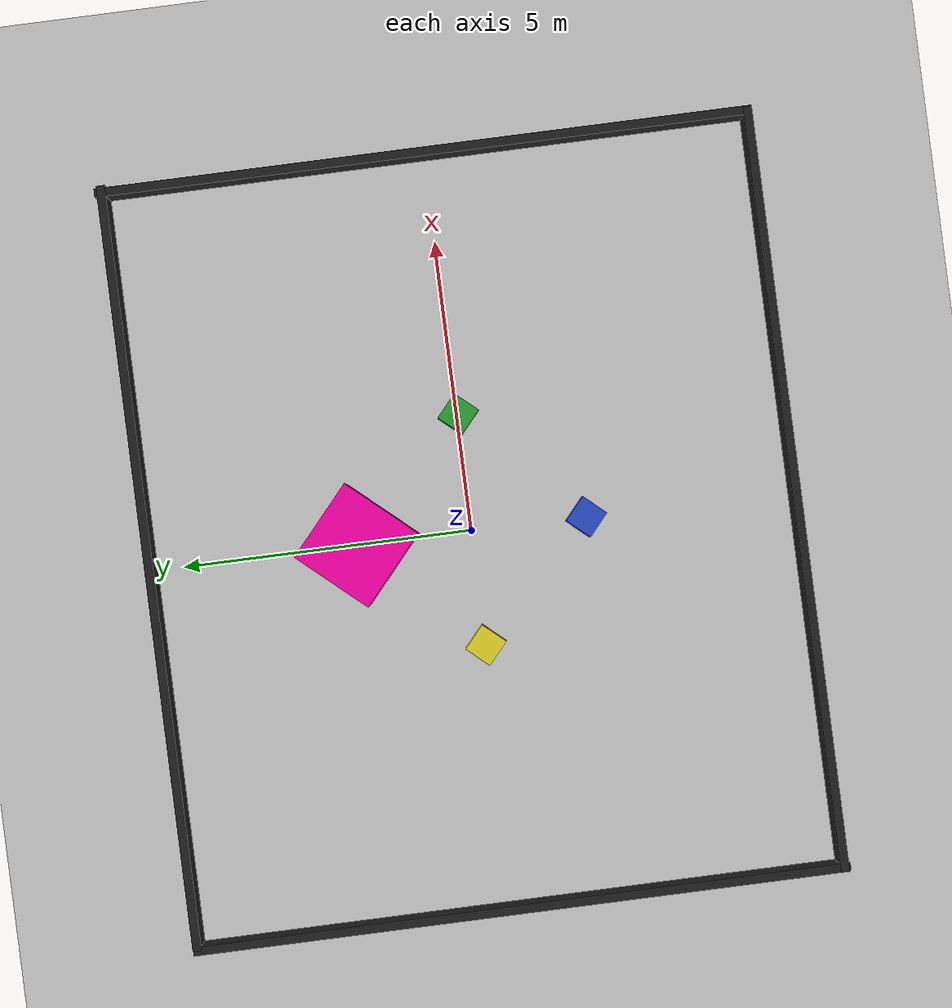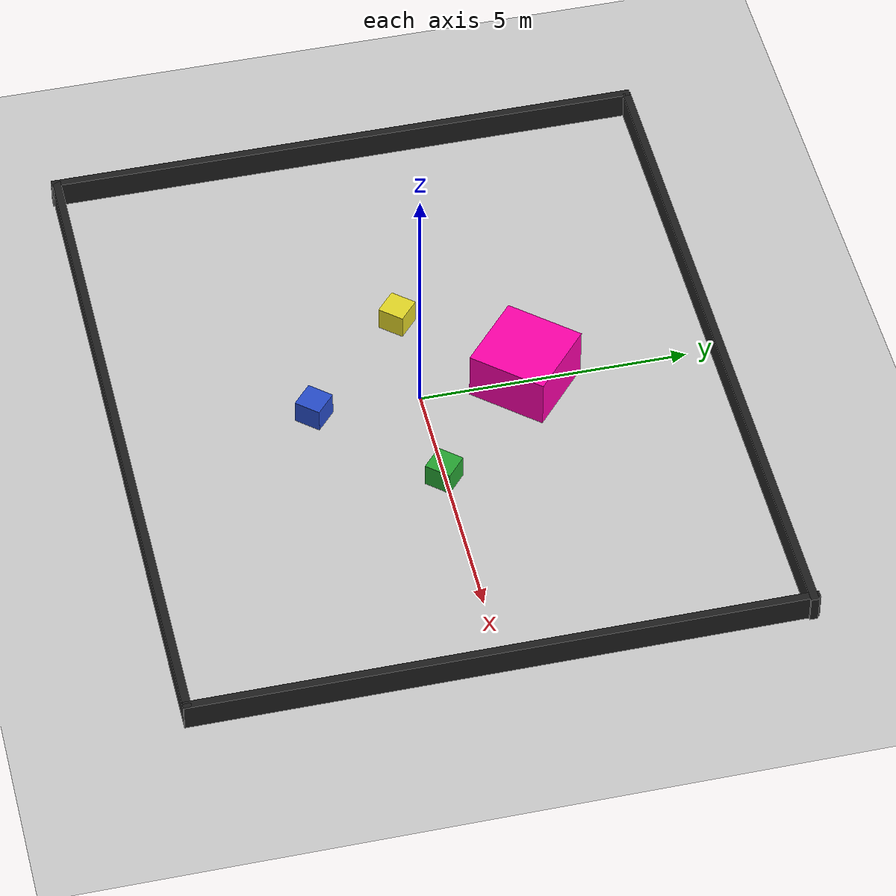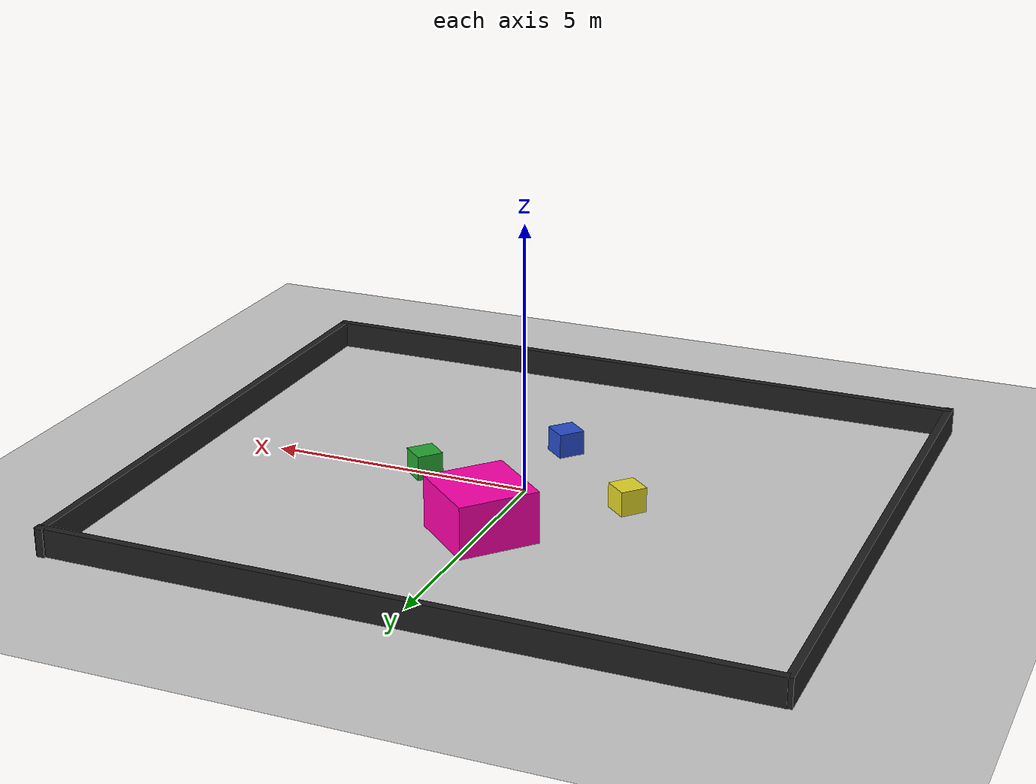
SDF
<sdf version="1.4">
 <world name="default">
  <scene><ambient>0.4 0.4 0.4 1</ambient><background>0.7 0.7 0.7 1</background><shadows>true</shadows></scene>
  <include><uri>model://sun</uri></include>
  <include><uri>model://ground_plane</uri></include>
  <include><uri>model://encaixotado/parede</uri></include>
  <include><uri>model://encaixotado/objeto/cubo_amarelo</uri><pose>-1.97 0.01 0.2 0 0 0.849</pose></include>
  <include><uri>model://encaixotado/objeto/cubo_azul</uri><pose>-0.02 -1.97 0.2 0 0 0.849</pose></include>
  <include><uri>model://encaixotado/objeto/cubo_majenta</uri><pose>0.00 1.96 0.2 0 0 0.849</pose></include>
  <include><uri>model://encaixotado/objeto/cubo_verde</uri><pose>2.00 -0.02 0.2 0 0 0.849</pose></include>
  <physics type="ode">
   <real_time_update_rate>1000.0</real_time_update_rate>
   <max_step_size>0.001</max_step_size>
   <real_time_factor>1</real_time_factor>
   <ode>
    <solver>
     <type>quick</type>
     <iters>150</iters>
     <precon_iters>0</precon_iters>
     <sor>1.400000</sor>
     <use_dynamic_moi_rescaling>1</use_dynamic_moi_rescaling>
    </solver>
    <constraints>
     <cfm>0.00001</cfm>
     <erp>0.2</erp>
     <contact_max_correcting_vel>2000.000000</contact_max_correcting_vel>
     <contact_surface_layer>0.01000</contact_surface_layer>
    </constraints>
   </ode>
  </physics>
 </world>
</sdf>

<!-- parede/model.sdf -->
<sdf version='1.6'>
  <model name='parede'>
    <link name='Wall_0'>
      <pose frame=''>-0.004951 -5.56026 0 0 -0 0</pose>
      <self_collide>0</self_collide>
      <enable_wind>0</enable_wind>
      <kinematic>0</kinematic>
      <inertial>
        <inertia>
          <ixx>0</ixx>
          <ixy>0</ixy>
          <ixz>0</ixz>
          <iyy>0</iyy>
          <iyz>0</iyz>
          <izz>0</izz>
        </inertia>
        <mass>0</mass>
        <pose frame=''>0 0 0 0 -0 0</pose>
      </inertial>
      <gravity>1</gravity>
      <visual name='Wall_0_Visual'>
        <pose frame=''>0 0 0 0 -0 0</pose>
        <geometry>
          <box>
            <size>13.1161 0.15 1.0</size>
          </box>
        </geometry>
        <material>
          <script>
            <uri>file://media/materials/scripts/gazebo.material</uri>
            <name>Gazebo/Black</name>
          </script>
          <ambient>0 0 0 1</ambient>
          <shader type='vertex'>
            <normal_map>__default__</normal_map>
          </shader>
          <diffuse>0 0 0 1</diffuse>
          <specular>0 0 0 1</specular>
          <emissive>0 0 0 1</emissive>
        </material>
        <meta>
          <layer>0</layer>
        </meta>
        <transparency>0</transparency>
        <cast_shadows>1</cast_shadows>
      </visual>
      <collision name='Wall_0_Collision'>
        <laser_retro>0</laser_retro>
        <max_contacts>10</max_contacts>
        <pose frame=''>0 0 0 0 -0 0</pose>
        <geometry>
          <box>
            <size>13.1161 0.15 1.0</size>
          </box>
        </geometry>
        <surface>
          <friction>
            <ode>
              <mu>1</mu>
              <mu2>1</mu2>
              <fdir1>0 0 0</fdir1>
              <slip1>0</slip1>
              <slip2>0</slip2>
            </ode>
            <torsional>
              <coefficient>1</coefficient>
              <patch_radius>0</patch_radius>
              <surface_radius>0</surface_radius>
              <use_patch_radius>1</use_patch_radius>
              <ode>
                <slip>0</slip>
              </ode>
            </torsional>
          </friction>
          <bounce>
            <restitution_coefficient>0</restitution_coefficient>
            <threshold>1e+06</threshold>
          </bounce>
          <contact>
            <collide_without_contact>0</collide_without_contact>
            <collide_without_contact_bitmask>1</collide_without_contact_bitmask>
            <collide_bitmask>1</collide_bitmask>
            <ode>
              <soft_cfm>0</soft_cfm>
              <soft_erp>0.2</soft_erp>
              <kp>1e+13</kp>
              <kd>1</kd>
              <max_vel>0.01</max_vel>
              <min_depth>0</min_depth>
            </ode>
            <bullet>
              <split_impulse>1</split_impulse>
              <split_impulse_penetration_threshold>-0.01</split_impulse_penetration_threshold>
              <soft_cfm>0</soft_cfm>
              <soft_erp>0.2</soft_erp>
              <kp>1e+13</kp>
              <kd>1</kd>
            </bullet>
          </contact>
        </surface>
      </collision>
    </link>
    <link name='Wall_1'>
      <pose frame=''>0.061052 5.53717 0 0 -0 3.14</pose>
      <self_collide>0</self_collide>
      <enable_wind>0</enable_wind>
      <kinematic>0</kinematic>
      <inertial>
        <inertia>
          <ixx>0</ixx>
          <ixy>0</ixy>
          <ixz>0</ixz>
          <iyy>0</iyy>
          <iyz>0</iyz>
          <izz>0</izz>
        </inertia>
        <mass>0</mass>
        <pose frame=''>0 0 0 0 -0 0</pose>
      </inertial>
      <gravity>1</gravity>
      <visual name='Wall_1_Visual'>
        <pose frame=''>0 0 0 0 -0 0</pose>
        <geometry>
          <box>
            <size>13.1161 0.15 1.0</size>
          </box>
        </geometry>
        <material>
          <script>
            <uri>file://media/materials/scripts/gazebo.material</uri>
            <name>Gazebo/Black</name>
          </script>
          <ambient>0 0 0 1</ambient>
          <shader type='vertex'>
            <normal_map>__default__</normal_map>
          </shader>
          <diffuse>0 0 0 1</diffuse>
          <specular>0 0 0 1</specular>
          <emissive>0 0 0 1</emissive>
        </material>
        <meta>
          <layer>0</layer>
        </meta>
        <transparency>0</transparency>
        <cast_shadows>1</cast_shadows>
      </visual>
      <collision name='Wall_1_Collision'>
        <laser_retro>0</laser_retro>
        <max_contacts>10</max_contacts>
        <pose frame=''>0 0 0 0 -0 0</pose>
        <geometry>
          <box>
            <size>13.1161 0.15 1.0</size>
          </box>
        </geometry>
        <surface>
          <friction>
            <ode>
              <mu>1</mu>
              <mu2>1</mu2>
              <fdir1>0 0 0</fdir1>
              <slip1>0</slip1>
              <slip2>0</slip2>
            </ode>
            <torsional>
              <coefficient>1</coefficient>
              <patch_radius>0</patch_radius>
              <surface_radius>0</surface_radius>
              <use_patch_radius>1</use_patch_radius>
              <ode>
                <slip>0</slip>
              </ode>
            </torsional>
          </friction>
          <bounce>
            <restitution_coefficient>0</restitution_coefficient>
            <threshold>1e+06</threshold>
          </bounce>
          <contact>
            <collide_without_contact>0</collide_without_contact>
            <collide_without_contact_bitmask>1</collide_without_contact_bitmask>
            <collide_bitmask>1</collide_bitmask>
            <ode>
              <soft_cfm>0</soft_cfm>
              <soft_erp>0.2</soft_erp>
              <kp>1e+13</kp>
              <kd>1</kd>
              <max_vel>0.01</max_vel>
              <min_depth>0</min_depth>
            </ode>
            <bullet>
              <split_impulse>1</split_impulse>
              <split_impulse_penetration_threshold>-0.01</split_impulse_penetration_threshold>
              <soft_cfm>0</soft_cfm>
              <soft_erp>0.2</soft_erp>
              <kp>1e+13</kp>
              <kd>1</kd>
            </bullet>
          </contact>
        </surface>
      </collision>
    </link>
    <link name='Wall_2'>
      <pose frame=''>6.5 0.005899 0 0 -0 1.57</pose>
      <self_collide>0</self_collide>
      <enable_wind>0</enable_wind>
      <kinematic>0</kinematic>
      <inertial>
        <inertia>
          <ixx>0</ixx>
          <ixy>0</ixy>
          <ixz>0</ixz>
          <iyy>0</iyy>
          <iyz>0</iyz>
          <izz>0</izz>
        </inertia>
        <mass>0</mass>
        <pose frame=''>0 0 0 0 -0 0</pose>
      </inertial>
      <gravity>1</gravity>
      <visual name='Wall_2_Visual'>
        <pose frame=''>0 0 0 0 -0 0</pose>
        <geometry>
          <box>
            <size>11.2703 0.15 1.0</size>
          </box>
        </geometry>
        <material>
          <script>
            <uri>file://media/materials/scripts/gazebo.material</uri>
            <name>Gazebo/Black</name>
          </script>
          <ambient>0 0 0 1</ambient>
          <shader type='vertex'>
            <normal_map>__default__</normal_map>
          </shader>
          <diffuse>0 0 0 1</diffuse>
          <specular>0 0 0 1</specular>
          <emissive>0 0 0 1</emissive>
        </material>
        <meta>
          <layer>0</layer>
        </meta>
        <transparency>0</transparency>
        <cast_shadows>1</cast_shadows>
      </visual>
      <collision name='Wall_2_Collision'>
        <laser_retro>0</laser_retro>
        <max_contacts>10</max_contacts>
        <pose frame=''>0 0 0 0 -0 0</pose>
        <geometry>
          <box>
            <size>11.2703 0.15 1.0</size>
          </box>
        </geometry>
        <surface>
          <friction>
            <ode>
              <mu>1</mu>
              <mu2>1</mu2>
              <fdir1>0 0 0</fdir1>
              <slip1>0</slip1>
              <slip2>0</slip2>
            </ode>
            <torsional>
              <coefficient>1</coefficient>
              <patch_radius>0</patch_radius>
              <surface_radius>0</surface_radius>
              <use_patch_radius>1</use_patch_radius>
              <ode>
                <slip>0</slip>
              </ode>
            </torsional>
          </friction>
          <bounce>
            <restitution_coefficient>0</restitution_coefficient>
            <threshold>1e+06</threshold>
          </bounce>
          <contact>
            <collide_without_contact>0</collide_without_contact>
            <collide_without_contact_bitmask>1</collide_without_contact_bitmask>
            <collide_bitmask>1</collide_bitmask>
            <ode>
              <soft_cfm>0</soft_cfm>
              <soft_erp>0.2</soft_erp>
              <kp>1e+13</kp>
              <kd>1</kd>
              <max_vel>0.01</max_vel>
              <min_depth>0</min_depth>
            </ode>
            <bullet>
              <split_impulse>1</split_impulse>
              <split_impulse_penetration_threshold>-0.01</split_impulse_penetration_threshold>
              <soft_cfm>0</soft_cfm>
              <soft_erp>0.2</soft_erp>
              <kp>1e+13</kp>
              <kd>1</kd>
            </bullet>
          </contact>
        </surface>
      </collision>
    </link>
    <link name='Wall_3'>
      <pose frame=''>-6.49998 -0.025026 0 0 0 -1.57</pose>
      <self_collide>0</self_collide>
      <enable_wind>0</enable_wind>
      <kinematic>0</kinematic>
      <inertial>
        <inertia>
          <ixx>0</ixx>
          <ixy>0</ixy>
          <ixz>0</ixz>
          <iyy>0</iyy>
          <iyz>0</iyz>
          <izz>0</izz>
        </inertia>
        <mass>0</mass>
        <pose frame=''>0 0 0 0 -0 0</pose>
      </inertial>
      <gravity>1</gravity>
      <visual name='Wall_3_Visual'>
        <pose frame=''>0 0 0 0 -0 0</pose>
        <geometry>
          <box>
            <size>11.2703 0.15 1.0</size>
          </box>
        </geometry>
        <material>
          <script>
            <uri>file://media/materials/scripts/gazebo.material</uri>
            <name>Gazebo/Black</name>
          </script>
          <ambient>0 0 0 1</ambient>
          <shader type='vertex'>
            <normal_map>__default__</normal_map>
          </shader>
          <diffuse>0 0 0 1</diffuse>
          <specular>0 0 0 1</specular>
          <emissive>0 0 0 1</emissive>
        </material>
        <meta>
          <layer>0</layer>
        </meta>
        <transparency>0</transparency>
        <cast_shadows>1</cast_shadows>
      </visual>
      <collision name='Wall_3_Collision'>
        <laser_retro>0</laser_retro>
        <max_contacts>10</max_contacts>
        <pose frame=''>0 0 0 0 -0 0</pose>
        <geometry>
          <box>
            <size>11.2703 0.15 1.0</size>
          </box>
        </geometry>
        <surface>
          <friction>
            <ode>
              <mu>1</mu>
              <mu2>1</mu2>
              <fdir1>0 0 0</fdir1>
              <slip1>0</slip1>
              <slip2>0</slip2>
            </ode>
            <torsional>
              <coefficient>1</coefficient>
              <patch_radius>0</patch_radius>
              <surface_radius>0</surface_radius>
              <use_patch_radius>1</use_patch_radius>
              <ode>
                <slip>0</slip>
              </ode>
            </torsional>
          </friction>
          <bounce>
            <restitution_coefficient>0</restitution_coefficient>
            <threshold>1e+06</threshold>
          </bounce>
          <contact>
            <collide_without_contact>0</collide_without_contact>
            <collide_without_contact_bitmask>1</collide_without_contact_bitmask>
            <collide_bitmask>1</collide_bitmask>
            <ode>
              <soft_cfm>0</soft_cfm>
              <soft_erp>0.2</soft_erp>
              <kp>1e+13</kp>
              <kd>1</kd>
              <max_vel>0.01</max_vel>
              <min_depth>0</min_depth>
            </ode>
            <bullet>
              <split_impulse>1</split_impulse>
              <split_impulse_penetration_threshold>-0.01</split_impulse_penetration_threshold>
              <soft_cfm>0</soft_cfm>
              <soft_erp>0.2</soft_erp>
              <kp>1e+13</kp>
              <kd>1</kd>
            </bullet>
          </contact>
        </surface>
      </collision>
    </link>
    <static>1</static>
    <allow_auto_disable>1</allow_auto_disable>
  </model>
</sdf>

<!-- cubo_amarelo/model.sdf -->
<sdf version='1.6'>
  <model name='cubo'>
    <link name='link'>
      <inertial>
        <mass>1</mass>
        <inertia>
          <ixx>0.166667</ixx>
          <ixy>0</ixy>
          <ixz>0</ixz>
          <iyy>0.166667</iyy>
          <iyz>0</iyz>
          <izz>0.166667</izz>
        </inertia>
        <pose frame=''>0 0 0 0 -0 0</pose>
      </inertial>
      <self_collide>0</self_collide>
      <enable_wind>0</enable_wind>
      <kinematic>0</kinematic>
      <pose frame=''>0 0 0 0 -0 0</pose>
      <gravity>1</gravity>
      <visual name='visual'>
        <geometry>
          <box>
            <size>0.5 0.5 0.5</size>
          </box>
        </geometry>
        <material>
          <script>
            <uri>file://media/materials/scripts/gazebo.material</uri>
            <name>Gazebo/Yellow</name>
          </script>
          <ambient>0.5 0.5 0.5 1</ambient>
          <shader type='pixel'>
            <normal_map>__default__</normal_map>
          </shader>
          <diffuse>0.6 0.4 0 1</diffuse>
          <emissive>0.6 0.4 0 1</emissive>
          <specular>0.6 0.4 0 1</specular>
        </material>
        <pose frame=''>0 0 0 0 -0 0</pose>
        <transparency>0</transparency>
        <cast_shadows>1</cast_shadows>
      </visual>
      <collision name='collision'>
        <laser_retro>0</laser_retro>
        <max_contacts>10</max_contacts>
        <pose frame=''>0 0 0 0 -0 0</pose>
        <geometry>
          <box>
            <size>0.5 0.5 0.5</size>
          </box>
        </geometry>
        <surface>
          <friction>
            <ode>
              <mu>1</mu>
              <mu2>1</mu2>
              <fdir1>0 0 0</fdir1>
              <slip1>0</slip1>
              <slip2>0</slip2>
            </ode>
            <torsional>
              <coefficient>1</coefficient>
              <patch_radius>0</patch_radius>
              <surface_radius>0</surface_radius>
              <use_patch_radius>1</use_patch_radius>
              <ode>
                <slip>0</slip>
              </ode>
            </torsional>
          </friction>
          <bounce>
            <restitution_coefficient>0</restitution_coefficient>
            <threshold>1e+06</threshold>
          </bounce>
          <contact>
            <collide_without_contact>0</collide_without_contact>
            <collide_without_contact_bitmask>1</collide_without_contact_bitmask>
            <collide_bitmask>1</collide_bitmask>
            <ode>
              <soft_cfm>0</soft_cfm>
              <soft_erp>0.2</soft_erp>
              <kp>1e+13</kp>
              <kd>1</kd>
              <max_vel>0.01</max_vel>
              <min_depth>0</min_depth>
            </ode>
            <bullet>
              <split_impulse>1</split_impulse>
              <split_impulse_penetration_threshold>-0.01</split_impulse_penetration_threshold>
              <soft_cfm>0</soft_cfm>
              <soft_erp>0.2</soft_erp>
              <kp>1e+13</kp>
              <kd>1</kd>
            </bullet>
          </contact>
        </surface>
      </collision>
    </link>
    <static>0</static>
    <allow_auto_disable>1</allow_auto_disable>
  </model>
</sdf>

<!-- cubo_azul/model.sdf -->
<sdf version='1.6'>
  <model name='cubo'>
    <link name='link'>
      <inertial>
        <mass>1</mass>
        <inertia>
          <ixx>0.166667</ixx>
          <ixy>0</ixy>
          <ixz>0</ixz>
          <iyy>0.166667</iyy>
          <iyz>0</iyz>
          <izz>0.166667</izz>
        </inertia>
        <pose frame=''>0 0 0 0 -0 0</pose>
      </inertial>
      <self_collide>0</self_collide>
      <enable_wind>0</enable_wind>
      <kinematic>0</kinematic>
      <pose frame=''>0 0 0 0 -0 0</pose>
      <gravity>1</gravity>
      <visual name='visual'>
        <geometry>
          <box>
            <size>0.5 0.5 0.5</size>
          </box>
        </geometry>
         <material>
          <script>
            <uri>file://media/materials/scripts/gazebo.material</uri>
            <name>Gazebo/Blue</name>
          </script>
          <ambient>0 0.5 1 1</ambient>
          <shader type='pixel'>
            <normal_map>__default__</normal_map>
          </shader>
          <diffuse>0 0 1 1</diffuse>
          <specular>0 0 1 1</specular>
          <emissive>0 0 1 1</emissive>
        </material>
        <pose frame=''>0 0 0 0 -0 0</pose>
        <transparency>0</transparency>
        <cast_shadows>1</cast_shadows>
      </visual>
      <collision name='collision'>
        <laser_retro>0</laser_retro>
        <max_contacts>10</max_contacts>
        <pose frame=''>0 0 0 0 -0 0</pose>
        <geometry>
          <box>
            <size>0.5 0.5 0.5</size>
          </box>
        </geometry>
        <surface>
          <friction>
            <ode>
              <mu>1</mu>
              <mu2>1</mu2>
              <fdir1>0 0 0</fdir1>
              <slip1>0</slip1>
              <slip2>0</slip2>
            </ode>
            <torsional>
              <coefficient>1</coefficient>
              <patch_radius>0</patch_radius>
              <surface_radius>0</surface_radius>
              <use_patch_radius>1</use_patch_radius>
              <ode>
                <slip>0</slip>
              </ode>
            </torsional>
          </friction>
          <bounce>
            <restitution_coefficient>0</restitution_coefficient>
            <threshold>1e+06</threshold>
          </bounce>
          <contact>
            <collide_without_contact>0</collide_without_contact>
            <collide_without_contact_bitmask>1</collide_without_contact_bitmask>
            <collide_bitmask>1</collide_bitmask>
            <ode>
              <soft_cfm>0</soft_cfm>
              <soft_erp>0.2</soft_erp>
              <kp>1e+13</kp>
              <kd>1</kd>
              <max_vel>0.01</max_vel>
              <min_depth>0</min_depth>
            </ode>
            <bullet>
              <split_impulse>1</split_impulse>
              <split_impulse_penetration_threshold>-0.01</split_impulse_penetration_threshold>
              <soft_cfm>0</soft_cfm>
              <soft_erp>0.2</soft_erp>
              <kp>1e+13</kp>
              <kd>1</kd>
            </bullet>
          </contact>
        </surface>
      </collision>
    </link>
    <static>0</static>
    <allow_auto_disable>1</allow_auto_disable>
  </model>
</sdf>

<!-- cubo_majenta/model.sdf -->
<sdf version='1.6'>
  <model name='cubo_majenta'>
    <link name='link'>
      <inertial>
        <mass>1</mass>
        <inertia>
          <ixx>0.166667</ixx>
          <ixy>0</ixy>
          <ixz>0</ixz>
          <iyy>0.166667</iyy>
          <iyz>0</iyz>
          <izz>0.166667</izz>
        </inertia>
        <pose frame=''>0 0 0 0 -0 0</pose>
      </inertial>
      <self_collide>0</self_collide>
      <enable_wind>0</enable_wind>
      <kinematic>0</kinematic>
      <pose frame=''>0 0 0 0 -0 0</pose>
      <gravity>1</gravity>
      <visual name='visual'>
        <geometry>
          <box>
            <size>1.5 1.5 1.5</size>
          </box>
        </geometry>
        <material>
          <script>
            <name>Gazebo/Grey</name>
            <uri>file://media/materials/scripts/gazebo.material</uri>
          </script>
          <shader type='vertex'>
            <normal_map>__default__</normal_map>
          </shader>
          <ambient>1 0 0.67 1</ambient>
          <diffuse>1 0 0.67 1</diffuse>
          <specular>1 0 0.67 1</specular>
          <emissive>1 0 0.67 1</emissive>
        </material>
        <pose frame=''>0 0 0 0 -0 0</pose>
        <transparency>0</transparency>
        <cast_shadows>1</cast_shadows>
      </visual>
      <collision name='collision'>
        <laser_retro>0</laser_retro>
        <max_contacts>10</max_contacts>
        <pose frame=''>0 0 0 0 -0 0</pose>
        <geometry>
          <box>
            <size>1.5 1.5 1.5</size>
          </box>
        </geometry>
        <surface>
          <friction>
            <ode>
              <mu>1</mu>
              <mu2>1</mu2>
              <fdir1>0 0 0</fdir1>
              <slip1>0</slip1>
              <slip2>0</slip2>
            </ode>
            <torsional>
              <coefficient>1</coefficient>
              <patch_radius>0</patch_radius>
              <surface_radius>0</surface_radius>
              <use_patch_radius>1</use_patch_radius>
              <ode>
                <slip>0</slip>
              </ode>
            </torsional>
          </friction>
          <bounce>
            <restitution_coefficient>0</restitution_coefficient>
            <threshold>1e+06</threshold>
          </bounce>
          <contact>
            <collide_without_contact>0</collide_without_contact>
            <collide_without_contact_bitmask>1</collide_without_contact_bitmask>
            <collide_bitmask>1</collide_bitmask>
            <ode>
              <soft_cfm>0</soft_cfm>
              <soft_erp>0.2</soft_erp>
              <kp>1e+13</kp>
              <kd>1</kd>
              <max_vel>0.01</max_vel>
              <min_depth>0</min_depth>
            </ode>
            <bullet>
              <split_impulse>1</split_impulse>
              <split_impulse_penetration_threshold>-0.01</split_impulse_penetration_threshold>
              <soft_cfm>0</soft_cfm>
              <soft_erp>0.2</soft_erp>
              <kp>1e+13</kp>
              <kd>1</kd>
            </bullet>
          </contact>
        </surface>
      </collision>
    </link>
    <static>0</static>
    <allow_auto_disable>1</allow_auto_disable>
  </model>
</sdf>

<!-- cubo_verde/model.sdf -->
<sdf version='1.6'>
  <model name='cubo'>
    <link name='link'>
      <inertial>
        <mass>1</mass>
        <inertia>
          <ixx>0.166667</ixx>
          <ixy>0</ixy>
          <ixz>0</ixz>
          <iyy>0.166667</iyy>
          <iyz>0</iyz>
          <izz>0.166667</izz>
        </inertia>
        <pose frame=''>0 0 0 0 -0 0</pose>
      </inertial>
      <self_collide>0</self_collide>
      <enable_wind>0</enable_wind>
      <kinematic>0</kinematic>
      <pose frame=''>0 0 0 0 -0 0</pose>
      <gravity>1</gravity>
      <visual name='visual'>
        <geometry>
          <box>
            <size>0.5 0.5 0.5</size>
          </box>
        </geometry>
             <material>
          <script>
            <uri>file://media/materials/scripts/gazebo.material</uri>
            <name>Gazebo/Green</name>
          </script>
          <ambient>0 1 0 1</ambient>
          <shader type='pixel'>
            <normal_map>__default__</normal_map>
          </shader>
          <lighting>1</lighting>
          <emissive>0 1 0.5 1</emissive>
          <diffuse>0 1 0.5 1</diffuse>
          <specular>0 1 0.5 1</specular>
        </material>
        <pose frame=''>0 0 0 0 -0 0</pose>
        <transparency>0</transparency>
        <cast_shadows>1</cast_shadows>
      </visual>
      <collision name='collision'>
        <laser_retro>0</laser_retro>
        <max_contacts>10</max_contacts>
        <pose frame=''>0 0 0 0 -0 0</pose>
        <geometry>
          <box>
            <size>0.5 0.5 0.5</size>
          </box>
        </geometry>
        <surface>
          <friction>
            <ode>
              <mu>1</mu>
              <mu2>1</mu2>
              <fdir1>0 0 0</fdir1>
              <slip1>0</slip1>
              <slip2>0</slip2>
            </ode>
            <torsional>
              <coefficient>1</coefficient>
              <patch_radius>0</patch_radius>
              <surface_radius>0</surface_radius>
              <use_patch_radius>1</use_patch_radius>
              <ode>
                <slip>0</slip>
              </ode>
            </torsional>
          </friction>
          <bounce>
            <restitution_coefficient>0</restitution_coefficient>
            <threshold>1e+06</threshold>
          </bounce>
          <contact>
            <collide_without_contact>0</collide_without_contact>
            <collide_without_contact_bitmask>1</collide_without_contact_bitmask>
            <collide_bitmask>1</collide_bitmask>
            <ode>
              <soft_cfm>0</soft_cfm>
              <soft_erp>0.2</soft_erp>
              <kp>1e+13</kp>
              <kd>1</kd>
              <max_vel>0.01</max_vel>
              <min_depth>0</min_depth>
            </ode>
            <bullet>
              <split_impulse>1</split_impulse>
              <split_impulse_penetration_threshold>-0.01</split_impulse_penetration_threshold>
              <soft_cfm>0</soft_cfm>
              <soft_erp>0.2</soft_erp>
              <kp>1e+13</kp>
              <kd>1</kd>
            </bullet>
          </contact>
        </surface>
      </collision>
    </link>
    <static>0</static>
    <allow_auto_disable>1</allow_auto_disable>
  </model>
</sdf>
